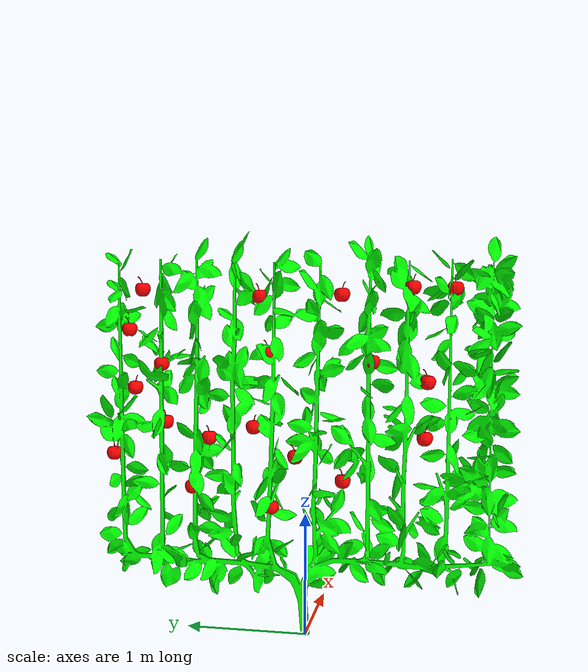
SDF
<?xml version="1.0" ?>
<sdf version="1.5">
  <model name="plant_full3">

    <include>
      <name>p1</name>
      <pose>0.0 0 0 0 0 0</pose>
      <uri>model://plant</uri>
    </include>

<include>
<name>a1</name>
<pose>0 1.1887 2.3177 0 0 2.623 </pose>
<uri>model://apple</uri>
</include>

<include>
<name>a2</name>
<pose>0 -0.88542 2.9565 0 0 2.5428 </pose>
<uri>model://apple</uri>
</include>

<include>
<name>a3</name>
<pose>0 0.40928 1.8073 0 0 2.5377 </pose>
<uri>model://apple</uri>
</include>

<include>
<name>a4</name>
<pose>0 1.6377 1.5531 0 0 2.029 </pose>
<uri>model://apple</uri>
</include>

<include>
<name>a5</name>
<pose>0 -0.32857 2.8975 0 0 2.8065 </pose>
<uri>model://apple</uri>
</include>

<include>
<name>a6</name>
<pose>0 0.40569 2.8809 0 0 1.2004 </pose>
<uri>model://apple</uri>
</include>

<include>
<name>a7</name>
<pose>0 0.30682 1.1414 0 0 1.3539 </pose>
<uri>model://apple</uri>
</include>

<include>
<name>a8</name>
<pose>0 -0.98701 1.7524 0 0 2.5388 </pose>
<uri>model://apple</uri>
</include>

<include>
<name>a9</name>
<pose>0 0.12296 1.5724 0 0 0.57658 </pose>
<uri>model://apple</uri>
</include>

<include>
<name>a10</name>
<pose>0 -1.1911 2.9495 0 0 1.7741 </pose>
<uri>model://apple</uri>
</include>

<include>
<name>a11</name>
<pose>0 -0.94653 2.2043 0 0 0.73371 </pose>
<uri>model://apple</uri>
</include>

<include>
<name>a12</name>
<pose>0 1.1955 1.8301 0 0 1.6218 </pose>
<uri>model://apple</uri>
</include>

<include>
<name>a13</name>
<pose>0 1.4095 2.9357 0 0 0.45372 </pose>
<uri>model://apple</uri>
</include>

<include>
<name>a14</name>
<pose>0 -0.5031 2.363 0 0 0.067002 </pose>
<uri>model://apple</uri>
</include>

<include>
<name>a15</name>
<pose>0 0.82778 1.7074 0 0 1.458 </pose>
<uri>model://apple</uri>
</include>

<include>
<name>a16</name>
<pose>0 -0.2816 1.3839 0 0 1.2239 </pose>
<uri>model://apple</uri>
</include>

<include>
<name>a17</name>
<pose>0 1.4174 2.1156 0 0 2.7271 </pose>
<uri>model://apple</uri>
</include>

<include>
<name>a18</name>
<pose>0 0.34141 2.4223 0 0 1.0017 </pose>
<uri>model://apple</uri>
</include>

<include>
<name>a19</name>
<pose>0 0.92281 1.2959 0 0 2.8471 </pose>
<uri>model://apple</uri>
</include>

<include>
<name>a20</name>
<pose>0 1.5235 2.6044 0 0 0.13949 </pose>
<uri>model://apple</uri>
</include>

  </model>
</sdf>

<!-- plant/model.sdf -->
<sdf version="1.5">
  <model name="plant">
    <static>true</static>
    <link name="link">
      <pose>0 0 0 0 0 0</pose>
      <visual name="visual">
        <geometry>
          <mesh>
            <uri>model://plant/meshes/plant.stl</uri>
          </mesh>
        </geometry>
        <material>
          <ambient>0 1 0 1</ambient>
          <diffuse>0 1 0 1</diffuse>
          <specular>0.1 0.1 0.1 1</specular>
          <emissive>0 0 0 0</emissive>
        </material>
      </visual>
    </link>
  </model>
</sdf>

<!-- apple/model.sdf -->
<sdf version="1.5">
  <model name="apple">
    <static>true</static>
    <link name="link">
      <pose>0 0 0 0 0 0</pose>
      <visual name="visual">
        <geometry>
          <mesh>
            <uri>model://apple/meshes/apple.stl</uri>
            <scale>0.5 0.5 0.5</scale>
          </mesh>
        </geometry>
        <material>
          <ambient>1 0 0 1</ambient>
          <diffuse>1 0 0 1</diffuse>
          <specular>0.1 0.1 0.1 1</specular>
          <emissive>0 0 0 0</emissive>
        </material>
      </visual>
    </link>
  </model>
</sdf>
